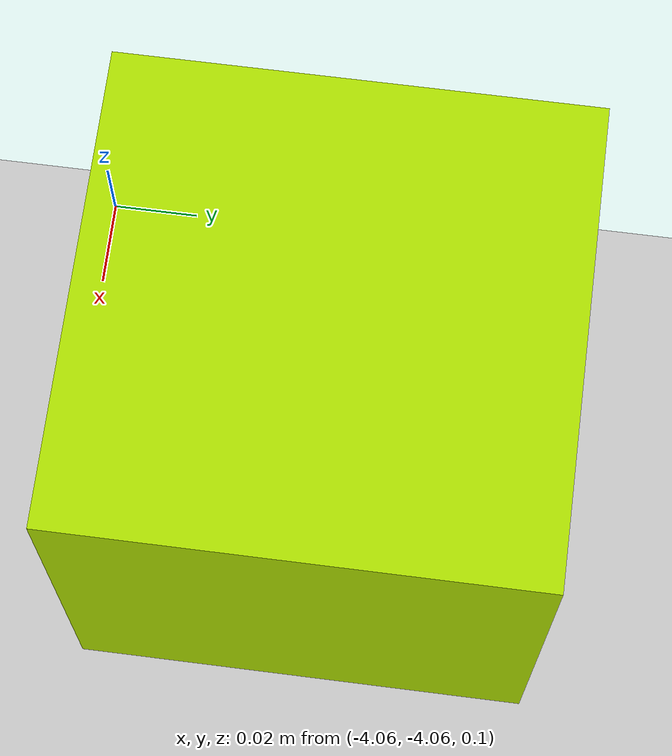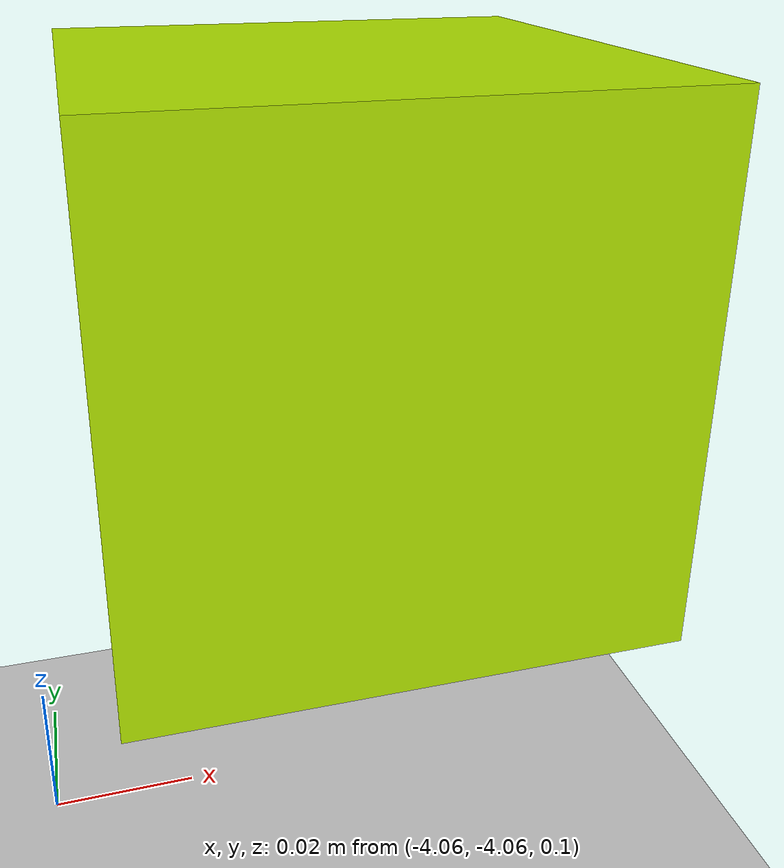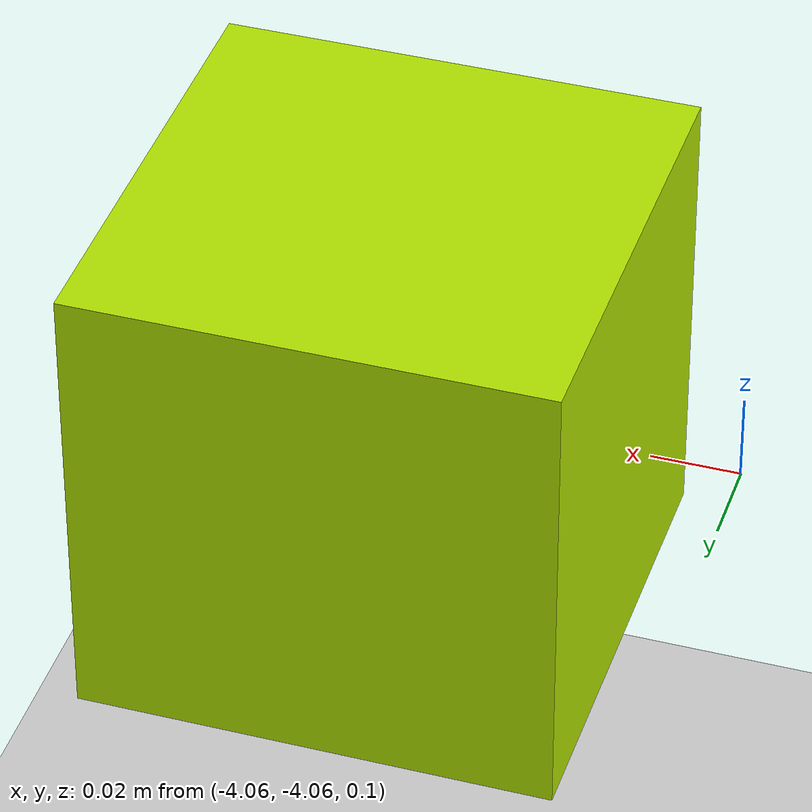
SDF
<?xml version="1.0"?>
<sdf version="1.5">
  <world name="default">

      <scene>
      <ambient>0.9 0.9 0.9 1</ambient>
      <shadows>True</shadows>
        </scene>

        <include>  <!--Add a light source-->
            <uri>model://sun</uri>
        </include>

        <include>  <!--Add a ground plane-->
            <uri>model://ground_plane</uri>
        </include>

       <model name="bb">
        <static>true</static>
        <pose> -4 -4 0.15 0 0 0 </pose>
        <link name="link">
          <visual name="mesh">
            <geometry>
              <box>
                <size>0.1 0.1 0.1 </size>
              </box>
            </geometry>
              <material>
            <ambient>0.5 0.75 0 1</ambient>
            <diffuse>0.7 0.9 0 1</diffuse>
            <specular>0.2 0.2 0.2 64</specular>
            <emissive>0.1 0 0.1 1</emissive>
          </material>
          </visual>
        </link>

      </model>

  </world>
</sdf>
